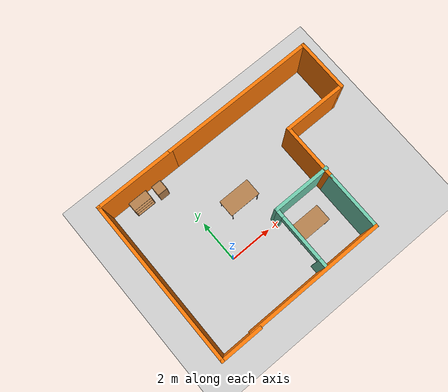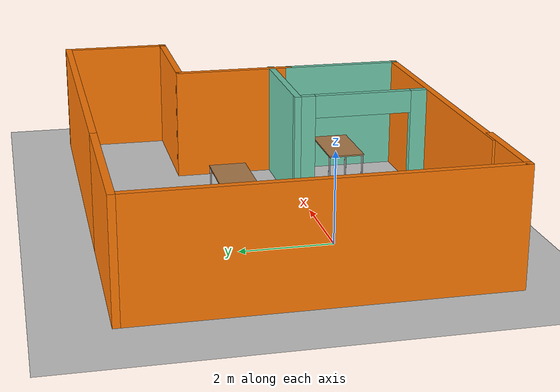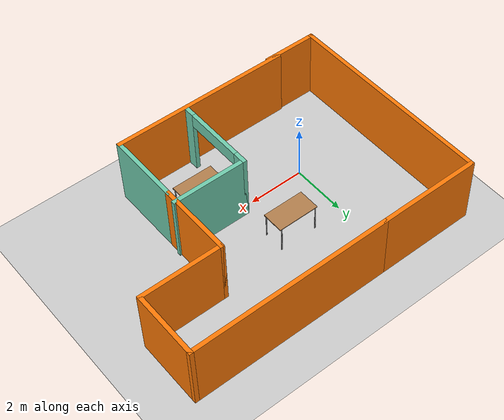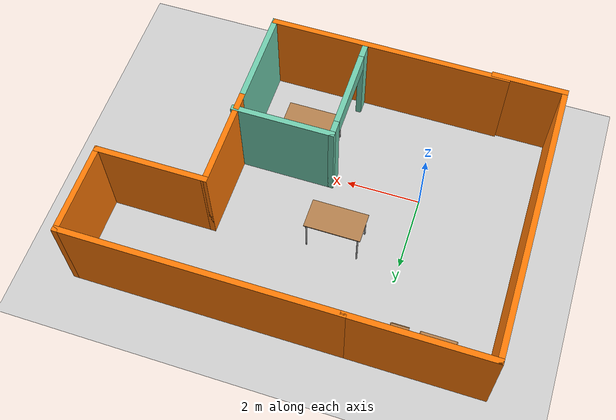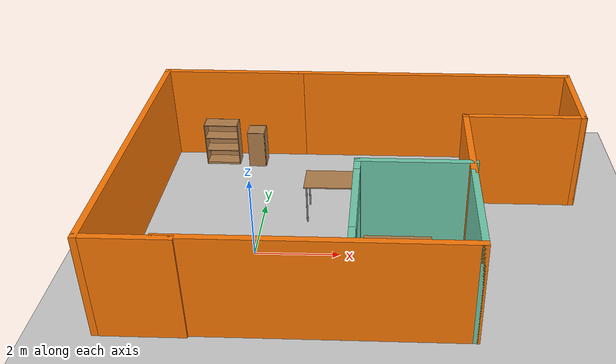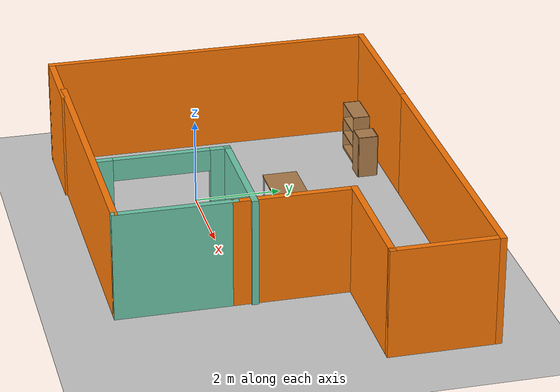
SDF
<sdf version="1.6">
 <world name="default">
  <light name="sun" type="directional">
   <pose>0 0 10 0 -0 0</pose>
   <diffuse>0.8 0.8 0.8 1</diffuse>
   <specular>0.2 0.2 0.2 1</specular>
   <attenuation>
    <range>1000</range>
    <constant>0.9</constant>
    <linear>0.01</linear>
    <quadratic>0.001</quadratic>
   </attenuation>
   <direction>-0.5 0.1 -0.9</direction>
  </light>
  <model name="ground_plane">
   <static>1</static>
   <link name="link">
    <collision name="collision">
     <geometry><plane><normal>0 0 1</normal><size>100 100</size></plane></geometry>
     <surface>
      <contact><collide_bitmask>65535</collide_bitmask></contact>
      <friction><ode><mu>100</mu><mu2>50</mu2></ode></friction>
     </surface>
    </collision>
    <visual name="visual">
     <cast_shadows>0</cast_shadows>
     <geometry><plane><normal>0 0 1</normal><size>100 100</size></plane></geometry>
     <material>
      <script><uri>file://media/materials/scripts/gazebo.material</uri><name>Gazebo/Grey</name></script>
     </material>
    </visual>
   </link>
  </model>
  <gravity>0 0 -9.8</gravity>
  <magnetic_field>6e-06 2.3e-05 -4.2e-05</magnetic_field>
  <atmosphere type="adiabatic"/>
  <physics name="default_physics" default="0" type="ode">
   <max_step_size>0.001</max_step_size>
   <real_time_factor>1</real_time_factor>
   <real_time_update_rate>1000</real_time_update_rate>
  </physics>
  <scene><ambient>0.4 0.4 0.4 1</ambient><background>0.7 0.7 0.7 1</background><shadows>1</shadows></scene>
  <spherical_coordinates>
   <surface_model>EARTH_WGS84</surface_model>
   <latitude_deg>0</latitude_deg>
   <longitude_deg>0</longitude_deg>
   <elevation>0</elevation>
   <heading_deg>0</heading_deg>
  </spherical_coordinates>
  <model name="building">
   <pose>2.46 0.96 0 0 -0 0</pose>
   <link name="Wall_0">
    <collision name="Wall_0_Collision">
     <geometry><box><size>6.5 0.15 2.5</size></box></geometry>
     <pose>0 0 1.25 0 -0 0</pose>
    </collision>
    <visual name="Wall_0_Visual">
     <pose>0 0 1.25 0 -0 0</pose>
     <geometry><box><size>6.5 0.15 2.5</size></box></geometry>
     <material>
      <script><uri>file://media/materials/scripts/gazebo.material</uri><name>Gazebo/Grey</name></script>
      <ambient>0.996078 0.47451 0.0196078 1</ambient>
     </material>
     <meta><layer>0</layer></meta>
    </visual>
    <pose>-0.675 -3.75 0 0 -0 0</pose>
   </link>
   <link name="Wall_1">
    <collision name="Wall_1_Collision">
     <geometry><box><size>2.75 0.15 2.5</size></box></geometry>
     <pose>0 0 1.25 0 -0 0</pose>
    </collision>
    <visual name="Wall_1_Visual">
     <pose>0 0 1.25 0 -0 0</pose>
     <geometry><box><size>2.75 0.15 2.5</size></box></geometry>
     <material>
      <script><uri>file://media/materials/scripts/gazebo.material</uri><name>Gazebo/Grey</name></script>
      <ambient>0.435294 0.796078 0.67451 1</ambient>
     </material>
     <meta><layer>0</layer></meta>
    </visual>
    <pose>2.5 -2.45 0 0 -0 1.5708</pose>
   </link>
   <link name="Wall_12">
    <collision name="Wall_12_Collision">
     <geometry><box><size>2.75 0.15 2.5</size></box></geometry>
     <pose>0 0 1.25 0 -0 0</pose>
    </collision>
    <visual name="Wall_12_Visual">
     <pose>0 0 1.25 0 -0 0</pose>
     <geometry><box><size>2.75 0.15 2.5</size></box></geometry>
     <material>
      <script><uri>file://media/materials/scripts/gazebo.material</uri><name>Gazebo/Grey</name></script>
      <ambient>0.435294 0.796078 0.67451 1</ambient>
     </material>
     <meta><layer>0</layer></meta>
    </visual>
    <pose>1.25632 -0.751529 0 0 -0 3.14159</pose>
   </link>
   <link name="Wall_13">
    <pose>-0.043677 -2.17653 0 0 0 -1.5708</pose>
    <visual name="Wall_13_Visual_0">
     <pose>-1.26536 0 1.25 0 -0 0</pose>
     <geometry><box><size>0.46929 0.15 2.5</size></box></geometry>
     <material>
      <script><uri>file://media/materials/scripts/gazebo.material</uri><name>Gazebo/Grey</name></script>
      <ambient>0.435294 0.796078 0.67451 1</ambient>
     </material>
     <meta><layer>0</layer></meta>
    </visual>
    <collision name="Wall_13_Collision_0">
     <geometry><box><size>0.46929 0.15 2.5</size></box></geometry>
     <pose>-1.26536 0 1.25 0 -0 0</pose>
    </collision>
    <visual name="Wall_13_Visual_1">
     <pose>1.31786 0 1.25 0 -0 0</pose>
     <geometry><box><size>0.364274 0.15 2.5</size></box></geometry>
     <material>
      <script><uri>file://media/materials/scripts/gazebo.material</uri><name>Gazebo/Grey</name></script>
      <ambient>0.435294 0.796078 0.67451 1</ambient>
     </material>
     <meta><layer>0</layer></meta>
    </visual>
    <collision name="Wall_13_Collision_1">
     <geometry><box><size>0.364274 0.15 2.5</size></box></geometry>
     <pose>1.31786 0 1.25 0 -0 0</pose>
    </collision>
    <visual name="Wall_13_Visual_2">
     <pose>0.052508 0 2.25 0 -0 0</pose>
     <geometry><box><size>2.16643 0.15 0.5</size></box></geometry>
     <material>
      <script><uri>file://media/materials/scripts/gazebo.material</uri><name>Gazebo/Grey</name></script>
      <ambient>0.435294 0.796078 0.67451 1</ambient>
     </material>
     <meta><layer>0</layer></meta>
    </visual>
    <collision name="Wall_13_Collision_2">
     <geometry><box><size>2.16643 0.15 0.5</size></box></geometry>
     <pose>0.052508 0 2.25 0 -0 0</pose>
    </collision>
   </link>
   <link name="Wall_2">
    <collision name="Wall_2_Collision">
     <geometry><box><size>2.75 0.15 2.5</size></box></geometry>
     <pose>0 0 1.25 0 -0 0</pose>
    </collision>
    <visual name="Wall_2_Visual">
     <pose>0 0 1.25 0 -0 0</pose>
     <geometry><box><size>2.75 0.15 2.5</size></box></geometry>
     <material>
      <script><uri>file://media/materials/scripts/gazebo.material</uri><name>Gazebo/Grey</name></script>
      <ambient>0.996078 0.47451 0.0196078 1</ambient>
     </material>
     <meta><layer>0</layer></meta>
    </visual>
    <pose>2.5 0.15 0 0 -0 1.5708</pose>
   </link>
   <link name="Wall_3">
    <collision name="Wall_3_Collision">
     <geometry><box><size>3 0.15 2.5</size></box></geometry>
     <pose>0 0 1.25 0 -0 0</pose>
    </collision>
    <visual name="Wall_3_Visual">
     <pose>0 0 1.25 0 -0 0</pose>
     <geometry><box><size>3 0.15 2.5</size></box></geometry>
     <material>
      <script><uri>file://media/materials/scripts/gazebo.material</uri><name>Gazebo/Grey</name></script>
      <ambient>0.996078 0.47451 0.0196078 1</ambient>
     </material>
     <meta><layer>0</layer></meta>
    </visual>
    <pose>3.925 1.45 0 0 -0 0</pose>
   </link>
   <link name="Wall_4">
    <collision name="Wall_4_Collision">
     <geometry><box><size>2.5 0.15 2.5</size></box></geometry>
     <pose>0 0 1.25 0 -0 0</pose>
    </collision>
    <visual name="Wall_4_Visual">
     <pose>0 0 1.25 0 -0 0</pose>
     <geometry><box><size>2.5 0.15 2.5</size></box></geometry>
     <material>
      <script><uri>file://media/materials/scripts/gazebo.material</uri><name>Gazebo/Grey</name></script>
      <ambient>0.996078 0.47451 0.0196078 1</ambient>
     </material>
     <meta><layer>0</layer></meta>
    </visual>
    <pose>5.35 2.625 0 0 -0 1.5708</pose>
   </link>
   <link name="Wall_5">
    <collision name="Wall_5_Collision">
     <geometry><box><size>7.25 0.15 2.5</size></box></geometry>
     <pose>0 0 1.25 0 -0 0</pose>
    </collision>
    <visual name="Wall_5_Visual">
     <pose>0 0 1.25 0 -0 0</pose>
     <geometry><box><size>7.25 0.15 2.5</size></box></geometry>
     <material>
      <script><uri>file://media/materials/scripts/gazebo.material</uri><name>Gazebo/Grey</name></script>
      <ambient>0.996078 0.47451 0.0196078 1</ambient>
     </material>
     <meta><layer>0</layer></meta>
    </visual>
    <pose>1.8 3.8 0 0 -0 3.14159</pose>
   </link>
   <link name="Wall_6">
    <collision name="Wall_6_Collision">
     <geometry><box><size>3.75 0.15 2.5</size></box></geometry>
     <pose>0 0 1.25 0 -0 0</pose>
    </collision>
    <visual name="Wall_6_Visual">
     <pose>0 0 1.25 0 -0 0</pose>
     <geometry><box><size>3.75 0.15 2.5</size></box></geometry>
     <material>
      <script><uri>file://media/materials/scripts/gazebo.material</uri><name>Gazebo/Grey</name></script>
      <ambient>0.996078 0.47451 0.0196078 1</ambient>
     </material>
     <meta><layer>0</layer></meta>
    </visual>
    <pose>-3.55 3.8 0 0 -0 3.14159</pose>
   </link>
   <link name="Wall_7">
    <collision name="Wall_7_Collision">
     <geometry><box><size>7.75 0.15 2.5</size></box></geometry>
     <pose>0 0 1.25 0 -0 0</pose>
    </collision>
    <visual name="Wall_7_Visual">
     <pose>0 0 1.25 0 -0 0</pose>
     <geometry><box><size>7.75 0.15 2.5</size></box></geometry>
     <material>
      <script><uri>file://media/materials/scripts/gazebo.material</uri><name>Gazebo/Grey</name></script>
      <ambient>0.996078 0.47451 0.0196078 1</ambient>
     </material>
     <meta><layer>0</layer></meta>
    </visual>
    <pose>-5.35 0 0 0 0 -1.5708</pose>
   </link>
   <link name="Wall_8">
    <collision name="Wall_8_Collision">
     <geometry><box><size>2 0.15 2.5</size></box></geometry>
     <pose>0 0 1.25 0 -0 0</pose>
    </collision>
    <visual name="Wall_8_Visual">
     <pose>0 0 1.25 0 -0 0</pose>
     <geometry><box><size>2 0.15 2.5</size></box></geometry>
     <material>
      <script><uri>file://media/materials/scripts/gazebo.material</uri><name>Gazebo/Grey</name></script>
      <ambient>0.996078 0.47451 0.0196078 1</ambient>
     </material>
     <meta><layer>0</layer></meta>
    </visual>
    <pose>-4.425 -3.8 0 0 -0 0</pose>
   </link>
   <static>1</static>
  </model>
  <model name="bookshelf">
   <static>1</static>
   <link name="link">
    <inertial><mass>1</mass></inertial>
    <collision name="back">
     <pose>0 0.005 0.6 0 -0 0</pose>
     <geometry><box><size>0.9 0.01 1.2</size></box></geometry>
    </collision>
    <visual name="visual1">
     <pose>0 0.005 0.6 0 -0 0</pose>
     <geometry><box><size>0.9 0.01 1.2</size></box></geometry>
     <material>
      <script><uri>file://media/materials/scripts/gazebo.material</uri><name>Gazebo/Wood</name></script>
     </material>
    </visual>
    <collision name="left_side">
     <pose>0.45 -0.195 0.6 0 -0 0</pose>
     <geometry><box><size>0.02 0.4 1.2</size></box></geometry>
    </collision>
    <visual name="visual2">
     <pose>0.45 -0.195 0.6 0 -0 0</pose>
     <geometry><box><size>0.02 0.4 1.2</size></box></geometry>
     <material>
      <script><uri>file://media/materials/scripts/gazebo.material</uri><name>Gazebo/Wood</name></script>
     </material>
    </visual>
    <collision name="right_side">
     <pose>-0.45 -0.195 0.6 0 -0 0</pose>
     <geometry><box><size>0.02 0.4 1.2</size></box></geometry>
    </collision>
    <visual name="visual3">
     <pose>-0.45 -0.195 0.6 0 -0 0</pose>
     <geometry><box><size>0.02 0.4 1.2</size></box></geometry>
     <material>
      <script><uri>file://media/materials/scripts/gazebo.material</uri><name>Gazebo/Wood</name></script>
     </material>
    </visual>
    <collision name="bottom">
     <pose>0 -0.195 0.03 0 -0 0</pose>
     <geometry><box><size>0.88 0.4 0.06</size></box></geometry>
    </collision>
    <visual name="visual4">
     <pose>0 -0.195 0.03 0 -0 0</pose>
     <geometry><box><size>0.88 0.4 0.06</size></box></geometry>
     <material>
      <script><uri>file://media/materials/scripts/gazebo.material</uri><name>Gazebo/Wood</name></script>
     </material>
    </visual>
    <collision name="top">
     <pose>0 -0.195 1.19 0 -0 0</pose>
     <geometry><box><size>0.88 0.4 0.02</size></box></geometry>
    </collision>
    <visual name="visual5">
     <pose>0 -0.195 1.19 0 -0 0</pose>
     <geometry><box><size>0.88 0.4 0.02</size></box></geometry>
     <material>
      <script><uri>file://media/materials/scripts/gazebo.material</uri><name>Gazebo/Wood</name></script>
     </material>
    </visual>
    <collision name="low_shelf">
     <pose>0 -0.195 0.43 0 -0 0</pose>
     <geometry><box><size>0.88 0.4 0.02</size></box></geometry>
    </collision>
    <visual name="visual6">
     <pose>0 -0.195 0.43 0 -0 0</pose>
     <geometry><box><size>0.88 0.4 0.02</size></box></geometry>
     <material>
      <script><uri>file://media/materials/scripts/gazebo.material</uri><name>Gazebo/Wood</name></script>
     </material>
    </visual>
    <collision name="high_shelf">
     <pose>0 -0.195 0.8 0 -0 0</pose>
     <geometry><box><size>0.88 0.4 0.02</size></box></geometry>
    </collision>
    <visual name="visual7">
     <pose>0 -0.195 0.8 0 -0 0</pose>
     <geometry><box><size>0.88 0.4 0.02</size></box></geometry>
     <material>
      <script><uri>file://media/materials/scripts/gazebo.material</uri><name>Gazebo/Wood</name></script>
     </material>
    </visual>
   </link>
   <pose>-1.46987 4.4639 0 0 -0 0</pose>
  </model>
  <model name="cabinet">
   <static>1</static>
   <link name="cabinet_bottom_plate">
    <inertial>
     <pose>0 0 -1 0 -0 0</pose>
     <inertia><ixx>2.05</ixx><ixy>0</ixy><ixz>0</ixz><iyy>2.05</iyy><iyz>0</iyz><izz>2.05</izz></inertia>
     <mass>25</mass>
    </inertial>
    <collision name="cabinet_bottom_plate_geom">
     <pose>0 0 0.01 0 -0 0</pose>
     <geometry><box><size>0.45 0.45 0.02</size></box></geometry>
    </collision>
    <visual name="cabinet_bottom_plate_geom_visual">
     <pose>0 0 0.01 0 -0 0</pose>
     <geometry><box><size>0.45 0.45 0.02</size></box></geometry>
     <material>
      <script><uri>file://media/materials/scripts/gazebo.material</uri><name>Gazebo/Wood</name></script>
     </material>
    </visual>
    <collision name="cabinet_bottom_plate_geom_cabinet_back_plate">
     <pose>0.235 0 0.51 0 -0 0</pose>
     <geometry><box><size>0.02 0.45 1.02</size></box></geometry>
    </collision>
    <visual name="cabinet_bottom_plate_geom_cabinet_back_plate_visual">
     <pose>0.235 0 0.51 0 -0 0</pose>
     <geometry><box><size>0.02 0.45 1.02</size></box></geometry>
     <material>
      <script><uri>file://media/materials/scripts/gazebo.material</uri><name>Gazebo/Wood</name></script>
     </material>
    </visual>
    <collision name="cabinet_bottom_plate_geom_cabinet_left_plate">
     <pose>0 0.235 0.51 0 -0 0</pose>
     <geometry><box><size>0.45 0.02 1.02</size></box></geometry>
    </collision>
    <visual name="cabinet_bottom_plate_geom_cabinet_left_plate_visual">
     <pose>0 0.235 0.51 0 -0 0</pose>
     <geometry><box><size>0.45 0.02 1.02</size></box></geometry>
     <material>
      <script><uri>file://media/materials/scripts/gazebo.material</uri><name>Gazebo/Wood</name></script>
     </material>
    </visual>
    <collision name="cabinet_bottom_plate_geom_cabinet_middle_plate">
     <pose>0 0 0.51 0 -0 0</pose>
     <geometry><box><size>0.45 0.45 0.02</size></box></geometry>
    </collision>
    <visual name="cabinet_bottom_plate_geom_cabinet_middle_plate_visual">
     <pose>0 0 0.51 0 -0 0</pose>
     <geometry><box><size>0.45 0.45 0.02</size></box></geometry>
     <material>
      <script><uri>file://media/materials/scripts/gazebo.material</uri><name>Gazebo/Wood</name></script>
     </material>
    </visual>
    <collision name="cabinet_bottom_plate_geom_cabinet_right_plate">
     <pose>0 -0.235 0.51 0 -0 0</pose>
     <geometry><box><size>0.45 0.02 1.02</size></box></geometry>
    </collision>
    <visual name="cabinet_bottom_plate_geom_cabinet_right_plate_visual">
     <pose>0 -0.235 0.51 0 -0 0</pose>
     <geometry><box><size>0.45 0.02 1.02</size></box></geometry>
     <material>
      <script><uri>file://media/materials/scripts/gazebo.material</uri><name>Gazebo/Wood</name></script>
     </material>
    </visual>
    <collision name="cabinet_bottom_plate_geom_cabinet_top_plate">
     <pose>0 0 1.01 0 -0 0</pose>
     <geometry><box><size>0.45 0.45 0.02</size></box></geometry>
    </collision>
    <visual name="cabinet_bottom_plate_geom_cabinet_top_plate_visual">
     <pose>0 0 1.01 0 -0 0</pose>
     <geometry><box><size>0.45 0.45 0.02</size></box></geometry>
     <material>
      <script><uri>file://media/materials/scripts/gazebo.material</uri><name>Gazebo/Wood</name></script>
     </material>
    </visual>
   </link>
   <pose>-0.514515 4.23362 0 0 -0 0</pose>
  </model>
  <model name="table">
   <static>1</static>
   <link name="link">
    <collision name="surface">
     <pose>0 0 1 0 -0 0</pose>
     <geometry><box><size>1.5 0.8 0.03</size></box></geometry>
     <surface><friction><ode><mu>0.6</mu><mu2>0.6</mu2></ode></friction></surface>
    </collision>
    <visual name="visual1">
     <pose>0 0 1 0 -0 0</pose>
     <geometry><box><size>1.5 0.8 0.03</size></box></geometry>
     <material>
      <script><uri>file://media/materials/scripts/gazebo.material</uri><name>Gazebo/Wood</name></script>
     </material>
    </visual>
    <collision name="front_left_leg">
     <pose>0.68 0.38 0.5 0 -0 0</pose>
     <geometry><cylinder><radius>0.02</radius><length>1</length></cylinder></geometry>
    </collision>
    <visual name="front_left_leg">
     <pose>0.68 0.38 0.5 0 -0 0</pose>
     <geometry><cylinder><radius>0.02</radius><length>1</length></cylinder></geometry>
     <material>
      <script><uri>file://media/materials/scripts/gazebo.material</uri><name>Gazebo/Grey</name></script>
     </material>
    </visual>
    <collision name="front_right_leg">
     <pose>0.68 -0.38 0.5 0 -0 0</pose>
     <geometry><cylinder><radius>0.02</radius><length>1</length></cylinder></geometry>
    </collision>
    <visual name="front_right_leg">
     <pose>0.68 -0.38 0.5 0 -0 0</pose>
     <geometry><cylinder><radius>0.02</radius><length>1</length></cylinder></geometry>
     <material>
      <script><uri>file://media/materials/scripts/gazebo.material</uri><name>Gazebo/Grey</name></script>
     </material>
    </visual>
    <collision name="back_right_leg">
     <pose>-0.68 -0.38 0.5 0 -0 0</pose>
     <geometry><cylinder><radius>0.02</radius><length>1</length></cylinder></geometry>
    </collision>
    <visual name="back_right_leg">
     <pose>-0.68 -0.38 0.5 0 -0 0</pose>
     <geometry><cylinder><radius>0.02</radius><length>1</length></cylinder></geometry>
     <material>
      <script><uri>file://media/materials/scripts/gazebo.material</uri><name>Gazebo/Grey</name></script>
     </material>
    </visual>
    <collision name="back_left_leg">
     <pose>-0.68 0.38 0.5 0 -0 0</pose>
     <geometry><cylinder><radius>0.02</radius><length>1</length></cylinder></geometry>
    </collision>
    <visual name="back_left_leg">
     <pose>-0.68 0.38 0.5 0 -0 0</pose>
     <geometry><cylinder><radius>0.02</radius><length>1</length></cylinder></geometry>
     <material>
      <script><uri>file://media/materials/scripts/gazebo.material</uri><name>Gazebo/Grey</name></script>
     </material>
    </visual>
   </link>
   <pose>1.80095 1.73823 0 0 -0 0</pose>
  </model>
  <model name="table_0">
   <static>1</static>
   <link name="link">
    <collision name="surface">
     <pose>0 0 1 0 -0 0</pose>
     <geometry><box><size>1.5 0.8 0.03</size></box></geometry>
     <surface><friction><ode><mu>0.6</mu><mu2>0.6</mu2></ode></friction></surface>
    </collision>
    <visual name="visual1">
     <pose>0 0 1 0 -0 0</pose>
     <geometry><box><size>1.5 0.8 0.03</size></box></geometry>
     <material>
      <script><uri>file://media/materials/scripts/gazebo.material</uri><name>Gazebo/Wood</name></script>
     </material>
    </visual>
    <collision name="front_left_leg">
     <pose>0.68 0.38 0.5 0 -0 0</pose>
     <geometry><cylinder><radius>0.02</radius><length>1</length></cylinder></geometry>
    </collision>
    <visual name="front_left_leg">
     <pose>0.68 0.38 0.5 0 -0 0</pose>
     <geometry><cylinder><radius>0.02</radius><length>1</length></cylinder></geometry>
     <material>
      <script><uri>file://media/materials/scripts/gazebo.material</uri><name>Gazebo/Grey</name></script>
     </material>
    </visual>
    <collision name="front_right_leg">
     <pose>0.68 -0.38 0.5 0 -0 0</pose>
     <geometry><cylinder><radius>0.02</radius><length>1</length></cylinder></geometry>
    </collision>
    <visual name="front_right_leg">
     <pose>0.68 -0.38 0.5 0 -0 0</pose>
     <geometry><cylinder><radius>0.02</radius><length>1</length></cylinder></geometry>
     <material>
      <script><uri>file://media/materials/scripts/gazebo.material</uri><name>Gazebo/Grey</name></script>
     </material>
    </visual>
    <collision name="back_right_leg">
     <pose>-0.68 -0.38 0.5 0 -0 0</pose>
     <geometry><cylinder><radius>0.02</radius><length>1</length></cylinder></geometry>
    </collision>
    <visual name="back_right_leg">
     <pose>-0.68 -0.38 0.5 0 -0 0</pose>
     <geometry><cylinder><radius>0.02</radius><length>1</length></cylinder></geometry>
     <material>
      <script><uri>file://media/materials/scripts/gazebo.material</uri><name>Gazebo/Grey</name></script>
     </material>
    </visual>
    <collision name="back_left_leg">
     <pose>-0.68 0.38 0.5 0 -0 0</pose>
     <geometry><cylinder><radius>0.02</radius><length>1</length></cylinder></geometry>
    </collision>
    <visual name="back_left_leg">
     <pose>-0.68 0.38 0.5 0 -0 0</pose>
     <geometry><cylinder><radius>0.02</radius><length>1</length></cylinder></geometry>
     <material>
      <script><uri>file://media/materials/scripts/gazebo.material</uri><name>Gazebo/Grey</name></script>
     </material>
    </visual>
   </link>
   <pose>3.33761 -0.984596 0 0 -0 0</pose>
  </model>
 </world>
</sdf>
